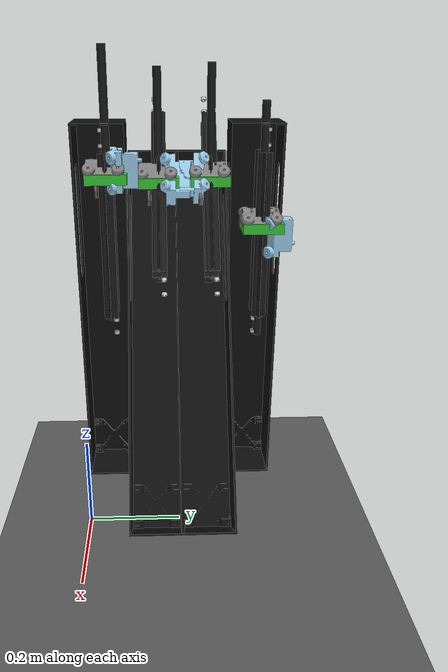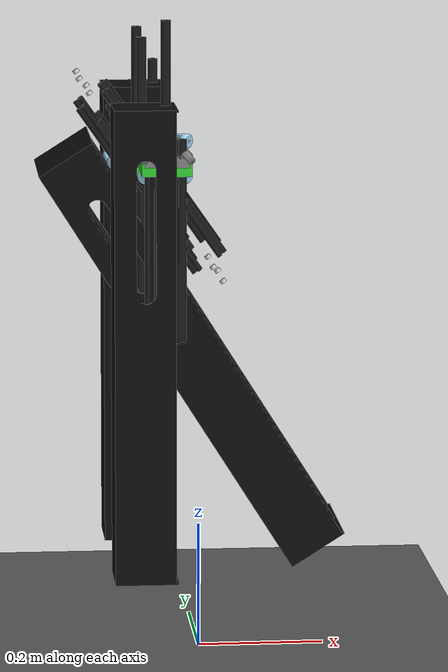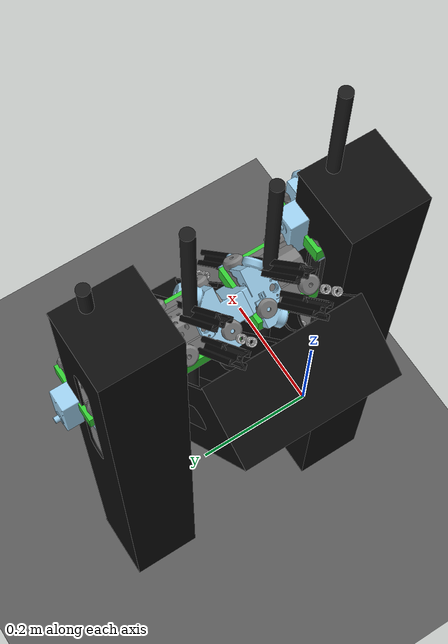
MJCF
<mujoco model="tars">
  <compiler angle="radian" />
  <option timestep="0.001" integrator="implicitfast" iterations="50" />
  <default>
    <geom contype="0" conaffinity="0" />
  </default>
  <visual>
    <rgba haze="0.58 0.58 0.58 1" />
    <headlight ambient="0.35 0.35 0.35" diffuse="0.7 0.7 0.7" specular="0.15 0.15 0.15" />
  </visual>
  <asset>
    <texture name="neutral_sky" type="skybox" builtin="flat" rgb1="0.55 0.55 0.55" rgb2="0.55 0.55 0.55" width="64" height="64" />
    <mesh name="side_plate" file="side_plate.stl" />
    <mesh name="faceplate_corner" file="faceplate_corner.stl" />
    <mesh name="corner" file="corner.stl" />
    <mesh name="bearing" file="bearing.stl" />
    <mesh name="connector_tab" file="connector_tab.stl" />
    <mesh name="aluminum_rail" file="aluminum_rail.stl" />
    <mesh name="stepper_mount_active" file="stepper_mount_active.stl" />
    <mesh name="stepper_coupler" file="stepper_coupler.stl" />
    <mesh name="servo_horn" file="servo_horn.stl" />
    <mesh name="funky_tab" file="funky_tab.stl" />
    <mesh name="stepper_mount_fixed" file="stepper_mount_fixed.stl" />
    <mesh name="active_carriage" file="active_carriage_demo.stl" />
    <mesh name="bearing__2" file="bearing__2.stl" />
    <mesh name="philips_m3x30" file="philips_m3x30.stl" />
    <mesh name="jst_s6b_ph_k_s" file="jst_s6b_ph_k_s.stl" />
    <mesh name="bottom_plate" file="bottom_plate.stl" />
    <mesh name="top_plate" file="top_plate.stl" />
    <mesh name="middle_part" file="middle_part.stl" />
    <mesh name="stepper_shaft" file="stepper_shaft.stl" />
    <mesh name="servo" file="servo_demo.stl" />
    <mesh name="fixed_carriage" file="fixed_carriage_demo.stl" />
    <mesh name="internals_visual" file="internals_visual_demo.stl" />
    <mesh name="internals_center_visual" file="internals_center_demo.stl" />
    <mesh name="internals_outside_visual" file="internals_outside_demo.stl" />
  </asset>
  <worldbody>
    <geom name="floor" type="plane" size="5 5 0.1" pos="0 0 0" rgba="0.35 0.35 0.35 1" contype="1" conaffinity="1" />
    <light name="key_light" directional="true" dir="0.25 -0.35 -1" diffuse="0.95 0.95 0.95" specular="0.2 0.2 0.2" ambient="0.18 0.18 0.18" />
    <camera name="full_body" pos="-0.05 -2.5 0.5" xyaxes="1 0 0 0 0.2 1" fovy="35" />
    <body name="internals" pos="0 0 0.1">
      <inertial pos="-0.0315084 0.202439 0.521923" quat="0.991459 0.00318635 -0.130289 0.00491224" mass="12.5568" diaginertia="0.65197 0.544104 0.237368" />
      <joint type="free" />
      <geom pos="0.0176706 0.20362195 0.37000284" quat="0.70710678 0.70710678 0 0" type="mesh" rgba="0.05 0.05 0.05 1" mesh="internals_outside_visual" />
      <geom pos="0.0176706 0.20362195 0.37000284" quat="0.70710678 0.70710678 0 0" type="mesh" rgba="0.05 0.05 0.05 1" mesh="internals_center_visual" />
      <geom pos="0.0176706 0.20362195 0.37000284" quat="0.70710678 0.70710678 0 0" type="mesh" rgba="0 0 0 0" mesh="internals_visual" />
      <geom pos="0.0334104 0.296836 0.49394" quat="0.67465 -0.674652 -0.211768 -0.211768" type="mesh" rgba="0 0 0 0" mesh="side_plate" />
      <geom pos="0.27927 0.210959 0.200872" quat="1.2659e-06 0.299485 3.97355e-07 -0.954101" type="mesh" rgba="0 0 0 0" mesh="faceplate_corner" />
      <geom pos="-0.008277 0.249211 0.464909" quat="0.626792 -0.327307 0.327308 -0.626794" type="mesh" rgba="0 0 0 0" mesh="side_plate" />
      <geom pos="-0.212449 0.210959 0.787007" quat="1.2659e-06 0.954101 -3.97355e-07 0.299485" type="mesh" rgba="0 0 0 0" mesh="faceplate_corner" />
      <geom pos="0.0334104 0.198411 0.49394" quat="0.67465 -0.674652 -0.211768 -0.211768" type="mesh" rgba="0 0 0 0" mesh="side_plate" />
      <geom pos="0.272012 0.287462 0.211294" quat="0.299485 -8.68541e-07 0.954101 -8.68541e-07" type="mesh" rgba="0 0 0 0" mesh="corner" />
      <geom pos="0.223017 0.287462 0.161697" quat="0.954101 0 -0.299485 0" type="mesh" rgba="0 0 0 0" mesh="corner" />
      <geom pos="0.0724923 0.249211 0.521156" quat="0.626792 -0.327307 0.327308 -0.626794" type="mesh" rgba="0 0 0 0" mesh="side_plate" />
      <geom pos="0.0334104 0.100793 0.49394" quat="0.67465 0.674652 -0.211768 0.211768" type="mesh" rgba="0 0 0 0" mesh="side_plate" />
      <geom pos="-0.156196 0.186669 0.826182" quat="0.299485 -8.68541e-07 0.954101 -8.68541e-07" type="mesh" rgba="0 0 0 0" mesh="faceplate_corner" />
      <geom pos="-0.008277 0.148418 0.464909" quat="0.626792 0.327307 0.327308 0.626794" type="mesh" rgba="0 0 0 0" mesh="side_plate" />
      <geom pos="0.223017 0.186669 0.161697" quat="0.954101 0 -0.299485 0" type="mesh" rgba="0 0 0 0" mesh="faceplate_corner" />
      <geom pos="0.0334104 0.199218 0.49394" quat="0.67465 0.674652 -0.211768 0.211768" type="mesh" rgba="0 0 0 0" mesh="side_plate" />
      <geom pos="-0.148938 0.110167 0.81576" quat="1.2659e-06 0.299485 3.97355e-07 -0.954101" type="mesh" rgba="0 0 0 0" mesh="corner" />
      <geom pos="-0.212449 0.110167 0.787007" quat="1.2659e-06 0.954101 -3.97355e-07 0.299485" type="mesh" rgba="0 0 0 0" mesh="corner" />
      <geom pos="0.0724923 0.148418 0.521156" quat="0.626792 0.327307 0.327308 0.626794" type="mesh" rgba="0 0 0 0" mesh="side_plate" />
      <geom pos="-0.047625 0.09525 0.381" quat="0.707105 -0.707108 0 0" type="mesh" rgba="0 0 0 0" mesh="side_plate" />
      <geom pos="-0.01335 0.00937372 0" quat="1.32679e-06 0 0 1" type="mesh" rgba="0 0 0 0" mesh="faceplate_corner" />
      <geom pos="-0.098425 0.047625 0.381" quat="0.499998 -0.5 0.500002 -0.5" type="mesh" rgba="0 0 0 0" mesh="side_plate" />
      <geom pos="-0.0819 0.00937372 0.762" quat="1.32679e-06 1 0 0" type="mesh" rgba="0 0 0 0" mesh="faceplate_corner" />
      <geom pos="-0.047625 -0.003175 0.381" quat="0.707105 -0.707108 0 0" type="mesh" rgba="0 0 0 0" mesh="side_plate" />
      <geom pos="-0.01335 0.0858763 0.0127" quat="1.76048e-12 -1.32679e-06 -1 1.32679e-06" type="mesh" rgba="0 0 0 0" mesh="corner" />
      <geom pos="-0.0819 0.0858763 0" quat="1 0 0 0" type="mesh" rgba="0 0 0 0" mesh="corner" />
      <geom pos="0 0.047625 0.381" quat="0.499998 -0.5 0.500002 -0.5" type="mesh" rgba="0 0 0 0" mesh="side_plate" />
      <geom pos="-0.047625 0.397628 0.381" quat="9.38184e-07 9.38187e-07 0.707108 0.707105" type="mesh" rgba="0 0 0 0" mesh="side_plate" />
      <geom pos="-0.0819 0.311752 0.762" quat="1.32679e-06 1 0 0" type="mesh" rgba="0 0 0 0" mesh="faceplate_corner" />
      <geom pos="0.003175 0.350003 0.381" quat="0.499998 0.5 -0.500002 -0.5" type="mesh" rgba="0 0 0 0" mesh="side_plate" />
      <geom pos="-0.01335 0.311752 0" quat="1.32679e-06 0 0 1" type="mesh" rgba="0 0 0 0" mesh="faceplate_corner" />
      <geom pos="-0.047625 0.299203 0.381" quat="9.38184e-07 9.38187e-07 0.707108 0.707105" type="mesh" rgba="0 0 0 0" mesh="side_plate" />
      <geom pos="-0.0819 0.388255 0.7493" quat="1 0 0 0" type="mesh" rgba="0 0 0 0" mesh="corner" />
      <geom pos="-0.01335 0.388255 0.762" quat="1.76048e-12 -1.32679e-06 -1 1.32679e-06" type="mesh" rgba="0 0 0 0" mesh="corner" />
      <geom pos="-0.09525 0.350003 0.381" quat="0.499998 0.5 -0.500002 -0.5" type="mesh" rgba="0 0 0 0" mesh="side_plate" />
      <geom pos="-0.156196 0.287462 0.826182" quat="0.299485 -8.68541e-07 0.954101 -8.68541e-07" type="mesh" rgba="0 0 0 0" mesh="corner" />
      <geom pos="0.0579081 0.287462 0.518738" quat="0.299485 -8.68541e-07 0.954101 -8.68541e-07" type="mesh" rgba="0 0 0 0" mesh="corner" />
      <geom pos="0.215759 0.210959 0.172119" quat="1.2659e-06 0.954101 -3.97355e-07 0.299485" type="mesh" rgba="0 0 0 0" mesh="faceplate_corner" />
      <geom pos="0.00165482 0.210959 0.479563" quat="1.2659e-06 0.954101 -3.97355e-07 0.299485" type="mesh" rgba="0 0 0 0" mesh="faceplate_corner" />
      <geom pos="-0.205192 0.287462 0.776586" quat="0.954101 0 -0.299485 0" type="mesh" rgba="0 0 0 0" mesh="corner" />
      <geom pos="0.00891259 0.287462 0.469141" quat="0.954101 0 -0.299485 0" type="mesh" rgba="0 0 0 0" mesh="corner" />
      <geom pos="-0.148938 0.210959 0.81576" quat="1.2659e-06 0.299485 3.97355e-07 -0.954101" type="mesh" rgba="0 0 0 0" mesh="faceplate_corner" />
      <geom pos="0.0651659 0.210959 0.508316" quat="1.2659e-06 0.299485 3.97355e-07 -0.954101" type="mesh" rgba="0 0 0 0" mesh="faceplate_corner" />
      <geom pos="0.27927 0.110167 0.200872" quat="1.2659e-06 0.299485 3.97355e-07 -0.954101" type="mesh" rgba="0 0 0 0" mesh="corner" />
      <geom pos="0.0651659 0.110167 0.508316" quat="1.2659e-06 0.299485 3.97355e-07 -0.954101" type="mesh" rgba="0 0 0 0" mesh="corner" />
      <geom pos="-0.205192 0.186669 0.776586" quat="0.954101 0 -0.299485 0" type="mesh" rgba="0 0 0 0" mesh="faceplate_corner" />
      <geom pos="0.00891259 0.186669 0.469141" quat="0.954101 0 -0.299485 0" type="mesh" rgba="0 0 0 0" mesh="faceplate_corner" />
      <geom pos="0.215759 0.110167 0.172119" quat="1.2659e-06 0.954101 -3.97355e-07 0.299485" type="mesh" rgba="0 0 0 0" mesh="corner" />
      <geom pos="0.00165482 0.110167 0.479563" quat="1.2659e-06 0.954101 -3.97355e-07 0.299485" type="mesh" rgba="0 0 0 0" mesh="corner" />
      <geom pos="0.272012 0.186669 0.211294" quat="0.299485 -8.68541e-07 0.954101 -8.68541e-07" type="mesh" rgba="0 0 0 0" mesh="faceplate_corner" />
      <geom pos="0.0579081 0.186669 0.518738" quat="0.299485 -8.68541e-07 0.954101 -8.68541e-07" type="mesh" rgba="0 0 0 0" mesh="faceplate_corner" />
      <geom pos="-0.01335 0.0858763 0.762" quat="1.76048e-12 -1.32679e-06 -1 1.32679e-06" type="mesh" rgba="0 0 0 0" mesh="corner" />
      <geom pos="-0.01335 0.0858763 0.38735" quat="1.76048e-12 -1.32679e-06 -1 1.32679e-06" type="mesh" rgba="0 0 0 0" mesh="corner" />
      <geom pos="-0.0819 0.00937372 0.0127" quat="1.32679e-06 1 0 0" type="mesh" rgba="0 0 0 0" mesh="faceplate_corner" />
      <geom pos="-0.0819 0.00937372 0.38735" quat="1.32679e-06 1 0 0" type="mesh" rgba="0 0 0 0" mesh="faceplate_corner" />
      <geom pos="-0.0819 0.0858763 0.7493" quat="1 0 0 0" type="mesh" rgba="0 0 0 0" mesh="corner" />
      <geom pos="-0.0819 0.0858763 0.37465" quat="1 0 0 0" type="mesh" rgba="0 0 0 0" mesh="corner" />
      <geom pos="-0.01335 0.00937372 0.7493" quat="1.32679e-06 0 0 1" type="mesh" rgba="0 0 0 0" mesh="faceplate_corner" />
      <geom pos="-0.01335 0.00937372 0.37465" quat="1.32679e-06 0 0 1" type="mesh" rgba="0 0 0 0" mesh="faceplate_corner" />
      <geom pos="-0.0819 0.388255 0" quat="1 0 0 0" type="mesh" rgba="0 0 0 0" mesh="corner" />
      <geom pos="-0.0819 0.388255 0.37465" quat="1 0 0 0" type="mesh" rgba="0 0 0 0" mesh="corner" />
      <geom pos="-0.01335 0.311752 0.7493" quat="1.32679e-06 0 0 1" type="mesh" rgba="0 0 0 0" mesh="faceplate_corner" />
      <geom pos="-0.01335 0.311752 0.37465" quat="1.32679e-06 0 0 1" type="mesh" rgba="0 0 0 0" mesh="faceplate_corner" />
      <geom pos="-0.01335 0.388255 0.0127" quat="1.76043e-12 1.32679e-06 1 1.32679e-06" type="mesh" rgba="0 0 0 0" mesh="corner" />
      <geom pos="-0.01335 0.388255 0.38735" quat="1.76048e-12 -1.32679e-06 -1 1.32679e-06" type="mesh" rgba="0 0 0 0" mesh="corner" />
      <geom pos="-0.0819 0.311752 0.0127" quat="1.32679e-06 1 0 0" type="mesh" rgba="0 0 0 0" mesh="faceplate_corner" />
      <geom pos="-0.0819 0.311752 0.38735" quat="1.32679e-06 1 0 0" type="mesh" rgba="0 0 0 0" mesh="faceplate_corner" />
      <geom pos="-0.0674533 0.0647134 0.7147" quat="0.65328 -0.653283 0.270598 -0.270597" type="mesh" rgba="0.0980392 0.0980392 0.0980392 1" mesh="aluminum_rail" />
      <geom pos="-0.0277967 0.0647134 0.3847" quat="0.270599 0.2706 -0.653282 -0.65328" type="mesh" rgba="0.0980392 0.0980392 0.0980392 1" mesh="aluminum_rail" />
      <geom pos="-0.0277967 0.367092 0.38585" quat="0.270599 0.2706 -0.653282 -0.65328" type="mesh" rgba="0.0980392 0.0980392 0.0980392 1" mesh="aluminum_rail" />
      <geom pos="-0.0674533 0.367092 0.71585" quat="0.65328 -0.653283 0.270598 -0.270597" type="mesh" rgba="0.0980392 0.0980392 0.0980392 1" mesh="aluminum_rail" />
      <geom pos="-0.173563 0.266299 0.756448" quat="0.704338 -0.542255 0.0625292 -0.453826" type="mesh" rgba="0.0980392 0.0980392 0.0980392 1" mesh="aluminum_rail" />
      <geom pos="0.0475673 0.266299 0.508307" quat="0.0625305 0.453827 -0.704336 -0.542256" type="mesh" rgba="0.0980392 0.0980392 0.0980392 1" mesh="aluminum_rail" />
      <geom pos="-0.173563 0.165506 0.756448" quat="0.704338 -0.542255 0.0625292 -0.453826" type="mesh" rgba="0.0980392 0.0980392 0.0980392 1" mesh="aluminum_rail" />
      <geom pos="0.0475673 0.165506 0.508307" quat="0.0625305 0.453827 -0.704336 -0.542256" type="mesh" rgba="0.0980392 0.0980392 0.0980392 1" mesh="aluminum_rail" />
      <body name="active_carriage_l0" pos="-0.047625 0.0637134 0.68095">
        <inertial pos="-5e-06 -0.0206834 -0.03737" quat="0.498456 0.501391 0.498633 0.501512" mass="0.0853426" diaginertia="8.29012e-05 4.84988e-05 4.8e-05" />
        <joint name="shoulder_prismatic_l0" pos="0 0 0" axis="0 0 1" type="slide" range="-0.2 0" actuatorfrcrange="-100 100" />
        <geom quat="1.76038e-12 1.32679e-06 1 1.32679e-06" type="mesh" rgba="0.615686 0.811765 0.929412 1" mesh="active_carriage" />
        <geom pos="0 -0.007 0.04275" quat="0.885128 0 0 -0.465347" type="mesh" rgba="0.819608 0.819608 0.819608 1" mesh="bearing__2" />
        <geom pos="0 -0.007 0.07135" quat="0.421534 0 0 -0.906813" type="mesh" rgba="0.819608 0.819608 0.819608 1" mesh="bearing__2" />
        <geom pos="0 0.009 -0.3043" quat="6.1742e-07 -0.465347 0.885128 -1.17438e-06" type="mesh" rgba="0.819608 0.819608 0.819608 1" mesh="bearing__2" />
        <geom pos="0 0.009 -0.3329" quat="1.20316e-06 -0.906814 0.421532 -5.59286e-07" type="mesh" rgba="0.819608 0.819608 0.819608 1" mesh="bearing__2" />
        <body name="servo_l0" pos="0 -0.0145366 -0.0375">
          <inertial pos="-5e-06 -0.0238368 -0.00029" quat="1 0.00088183 0 0" mass="0.356309" diaginertia="0.0001939 0.0001515 9.47998e-05" />
          <joint name="hip_revolute_l0" pos="0 0 0" axis="0 1 0" range="-1.57 1.57" actuatorfrcrange="-10 10" />
          <geom quat="1.76038e-12 1.32679e-06 1 1.32679e-06" type="mesh" rgba="0.4 0.4 0.4 1" mesh="servo" />
          <body name="fixed_carriage_l0" pos="0 0.0165366 0.025693">
            <inertial pos="-0.0187 0.0375505 -0.155085" quat="0.707106 0.000887566 -0.000889069 0.707106" mass="0.101273" diaginertia="7.68003e-05 4.97e-05 3.69997e-05" />
            <joint name="knee_prismatic_l0" pos="0 0 0" axis="0 0 1" type="slide" range="-0.2 0" actuatorfrcrange="-100 100" />
            <geom pos="0 0 0" quat="1 0 0 0" type="mesh" mesh="fixed_carriage" />
            <geom size="0.008 0.235161" type="cylinder" rgba="0.1 0.1 0.1 1" contype="1" conaffinity="1" />
            <geom size="0.04 0.04 0.01" type="box" rgba="0.2 0.8 0.2 1" contype="1" conaffinity="1" />
          </body>
        </body>
      </body>
      <body name="active_carriage_l1" pos="-0.047625 0.366092 0.553892">
        <inertial pos="-5e-06 -0.323062 0.089688" quat="0.498456 0.501391 0.498633 0.501512" mass="0.0853426" diaginertia="8.29012e-05 4.84988e-05 4.8e-05" />
        <joint name="shoulder_prismatic_l1" pos="0 0 0" axis="0 0 1" type="slide" range="-0.2 0" actuatorfrcrange="-100 100" />
        <geom type="mesh" rgba="0.615686 0.811765 0.929412 1" mesh="active_carriage" />
        <geom pos="0 -0.007 -0.177042" quat="6.1742e-07 -0.465347 0.885128 -1.17438e-06" type="mesh" rgba="0.819608 0.819608 0.819608 1" mesh="bearing__2" />
        <geom pos="0 -0.007 -0.205642" quat="1.20316e-06 -0.906814 0.421532 -5.59286e-07" type="mesh" rgba="0.819608 0.819608 0.819608 1" mesh="bearing__2" />
        <geom pos="0 0.009 0.170008" quat="0.885128 0 0 -0.465347" type="mesh" rgba="0.819608 0.819608 0.819608 1" mesh="bearing__2" />
        <geom pos="0 0.009 0.198608" quat="0.421534 0 0 -0.906813" type="mesh" rgba="0.819608 0.819608 0.819608 1" mesh="bearing__2" />
        <body name="servo_l1" pos="0 -0.014537 0.0375">
          <inertial pos="-5e-06 -0.326215 0.051768" quat="1 0.00088183 0 0" mass="0.356309" diaginertia="0.0001939 0.0001515 9.47998e-05" />
          <joint name="hip_revolute_l1" pos="0 0 0" axis="0 1 0" range="-1.57 1.57" actuatorfrcrange="-10 10" />
          <geom type="mesh" rgba="0.4 0.4 0.4 1" mesh="servo" />
          <body name="fixed_carriage_l1" pos="0 0.016537 -0.018156">
            <inertial pos="-0.0153251 -0.264828 -0.0477584" quat="0.707106 0.000887566 -0.000889069 0.707106" mass="0.101273" diaginertia="7.68003e-05 4.97e-05 3.69997e-05" />
            <joint name="knee_prismatic_l1" pos="0 0 0" axis="0 0 1" type="slide" range="-0.2 0" actuatorfrcrange="-100 100" />
            <geom pos="0 0 0" quat="1 0 0 0" type="mesh" mesh="fixed_carriage" />
            <geom size="0.008 0.234483" type="cylinder" rgba="0.1 0.1 0.1 1" contype="1" conaffinity="1" />
            <geom size="0.04 0.04 0.01" type="box" rgba="0.2 0.8 0.2 1" contype="1" conaffinity="1" />
          </body>
        </body>
      </body>
      <body name="active_carriage_l2" pos="-0.0812508 0.267299 0.658588">
        <inertial pos="0.0336208 -0.224269 -0.015008" quat="0.498456 0.501391 0.498633 0.501512" mass="0.0853426" diaginertia="8.29012e-05 4.84988e-05 4.8e-05" />
        <joint name="shoulder_prismatic_l2" pos="0 0 0" axis="0 0 1" type="slide" range="-0.2 0" actuatorfrcrange="-100 100" />
        <geom quat="1.2659e-06 0.954101 -3.97355e-07 0.299485" type="mesh" rgba="0.615686 0.811765 0.929412 1" mesh="active_carriage" />
        <geom pos="0.1171471 0.007 -0.168218" quat="0.265083 -0.44399 0.844501 -0.139363" type="mesh" rgba="0.819608 0.819608 0.819608 1" mesh="bearing__2" />
        <geom pos="0.1334914 0.007 -0.191688" quat="0.126244 -0.865191 0.402184 -0.271578" type="mesh" rgba="0.819608 0.819608 0.819608 1" mesh="bearing__2" />
        <geom pos="-0.0811842 -0.009 0.116577" quat="0.844501 0.139364 -0.265083 -0.443989" type="mesh" rgba="0.819608 0.819608 0.819608 1" mesh="bearing__2" />
        <geom pos="-0.0975282 -0.009 0.140047" quat="0.402184 0.271577 -0.126243 -0.865192" type="mesh" rgba="0.819608 0.819608 0.819608 1" mesh="bearing__2" />
        <body name="servo_l2" pos="0.0226945 -0.016537 -0.032588">
          <inertial pos="0.0109263 -0.225422 0.01716" quat="1 0.00088183 0 0" mass="0.356309" diaginertia="0.0001939 0.0001515 9.47998e-05" />
          <joint name="hip_revolute_l2" pos="0 0 0" axis="0 1 0" range="-1.57 1.57" actuatorfrcrange="-10 10" />
          <geom quat="0.299485 -8.68541e-07 0.954101 -8.68541e-07" type="mesh" rgba="0.4 0.4 0.4 1" mesh="servo" />
          <body name="fixed_carriage_l2" pos="-0.0226945 0.016537 0.032588">
            <inertial pos="-0.01772 -0.164035 -0.184265" quat="0.707106 0.000887566 -0.000889069 0.707106" mass="0.101273" diaginertia="7.68003e-05 4.97e-05 3.69997e-05" />
            <joint name="knee_prismatic_l2" pos="0 0 0" axis="0 0 1" type="slide" range="-0.2 0" actuatorfrcrange="-100 100" />
            <geom pos="0 0 0" quat="1 0 0 0" type="mesh" mesh="fixed_carriage" />
            <geom size="0.008 0.21412" type="cylinder" rgba="0.1 0.1 0.1 1" contype="1" conaffinity="1" />
            <geom size="0.04 0.04 0.01" type="box" rgba="0.2 0.8 0.2 1" contype="1" conaffinity="1" />
          </body>
        </body>
      </body>
      <body name="active_carriage_l3" pos="-0.0798627 0.164506 0.656595">
        <inertial pos="0.0322327 -0.121476 -0.013015" quat="0.498456 0.501391 0.498633 0.501512" mass="0.0853426" diaginertia="8.29012e-05 4.84988e-05 4.8e-05" />
        <joint name="shoulder_prismatic_l3" pos="0 0 0" axis="0 0 1" type="slide" range="-0.2 0" actuatorfrcrange="-100 100" />
        <geom quat="0.299485 -8.68541e-07 0.954101 -8.68541e-07" type="mesh" rgba="0.615686 0.811765 0.929412 1" mesh="active_carriage" />
        <geom pos="0.115759 0.009 -0.166225" quat="0.265083 -0.44399 0.844501 -0.139363" type="mesh" rgba="0.819608 0.819608 0.819608 1" mesh="bearing__2" />
        <geom pos="0.1321033 0.009 -0.189695" quat="0.126244 -0.865191 0.402184 -0.271578" type="mesh" rgba="0.819608 0.819608 0.819608 1" mesh="bearing__2" />
        <geom pos="-0.0825723 -0.007 0.11857" quat="0.844501 0.139364 -0.265083 -0.443989" type="mesh" rgba="0.819608 0.819608 0.819608 1" mesh="bearing__2" />
        <geom pos="-0.0989163 -0.007 0.14204" quat="0.402184 0.271577 -0.126243 -0.865192" type="mesh" rgba="0.819608 0.819608 0.819608 1" mesh="bearing__2" />
        <body name="servo_l3" pos="0.0214305 -0.014536 -0.030773">
          <inertial pos="0.0108022 -0.12463 0.017338" quat="1 0.00088183 0 0" mass="0.356309" diaginertia="0.0001939 0.0001515 9.47998e-05" />
          <joint name="hip_revolute_l3" pos="0 0 0" axis="0 1 0" range="-1.57 1.57" actuatorfrcrange="-10 10" />
          <geom quat="0.299485 -8.68541e-07 0.954101 -8.68541e-07" type="mesh" rgba="0.4 0.4 0.4 1" mesh="servo" />
          <body name="fixed_carriage_l3" pos="-0.0214305 0.014536 0.030773">
            <inertial pos="0.0708434 -0.0980501 -0.136688" quat="0.707106 0.000887566 -0.000889069 0.707106" mass="0.101273" diaginertia="7.68003e-05 4.97e-05 3.69997e-05" />
            <joint name="knee_prismatic_l3" pos="0 0 0" axis="0 0 1" type="slide" range="-0.2 0" actuatorfrcrange="-100 100" />
            <geom pos="0 0 0" quat="1 0 0 0" type="mesh" mesh="fixed_carriage" />
            <geom size="0.008 0.209843" type="cylinder" rgba="0.1 0.1 0.1 1" contype="1" conaffinity="1" />
            <geom size="0.04 0.04 0.01" type="box" rgba="0.2 0.8 0.2 1" contype="1" conaffinity="1" />
          </body>
        </body>
      </body>
    </body>
  </worldbody>
  <actuator>
    <position name="shoulder_l0" joint="shoulder_prismatic_l0" kp="2000" />
    <position name="hip_l0" joint="hip_revolute_l0" kp="200" />
    <position name="knee_l0" joint="knee_prismatic_l0" kp="2000" />
    <position name="shoulder_l1" joint="shoulder_prismatic_l1" kp="2000" />
    <position name="hip_l1" joint="hip_revolute_l1" kp="200" />
    <position name="knee_l1" joint="knee_prismatic_l1" kp="2000" />
    <position name="shoulder_l2" joint="shoulder_prismatic_l2" kp="2000" />
    <position name="hip_l2" joint="hip_revolute_l2" kp="200" />
    <position name="knee_l2" joint="knee_prismatic_l2" kp="2000" />
    <position name="shoulder_l3" joint="shoulder_prismatic_l3" kp="2000" />
    <position name="hip_l3" joint="hip_revolute_l3" kp="200" />
    <position name="knee_l3" joint="knee_prismatic_l3" kp="2000" />
  </actuator>
</mujoco>
